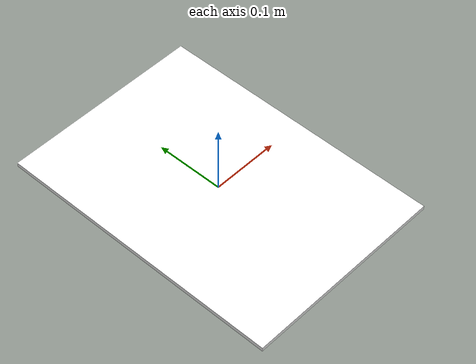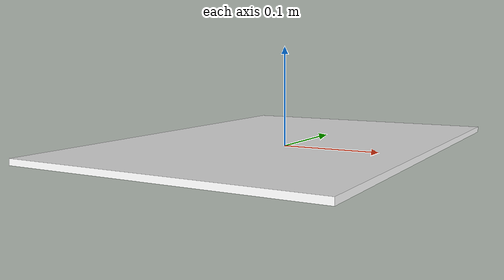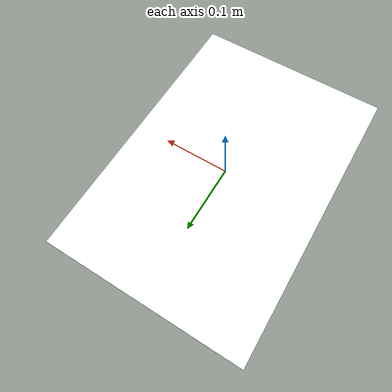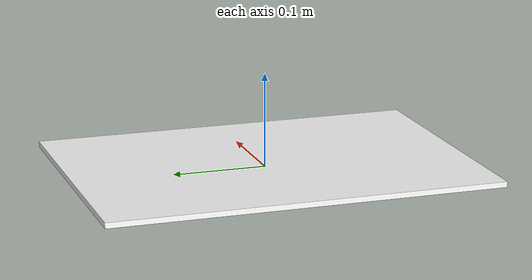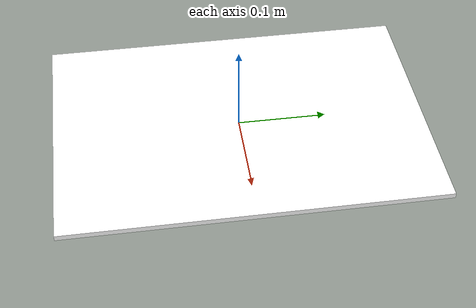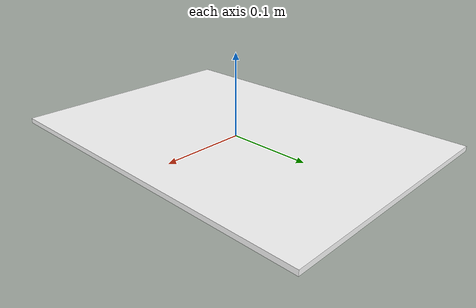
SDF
<?xml version="1.0"?>
<sdf version="1.9">
  <model name="qr_panel_a3">
    <static>true</static>
    <link name="panel">
      <pose>0 0 0.003 0 0 0</pose>
      <visual name="face">
        <geometry>
          <box><size>0.297 0.42 0.006</size></box>
        </geometry>
        <material>
          <diffuse>1 1 1 1</diffuse>
          <specular>0.05 0.05 0.05 1</specular>
          <pbr>
            <metal>
              <albedo_map>model://qr_panel_a3/materials/textures/qr.png</albedo_map>
            </metal>
          </pbr>
        </material>
      </visual>
      <collision name="surface">
        <geometry>
          <box><size>0.297 0.42 0.006</size></box>
        </geometry>
      </collision>
    </link>
  </model>
</sdf>
